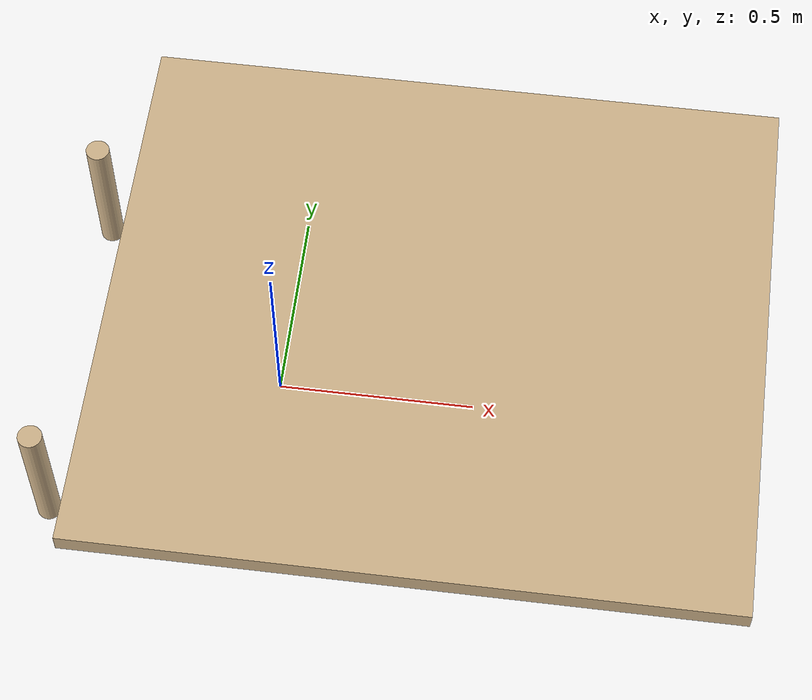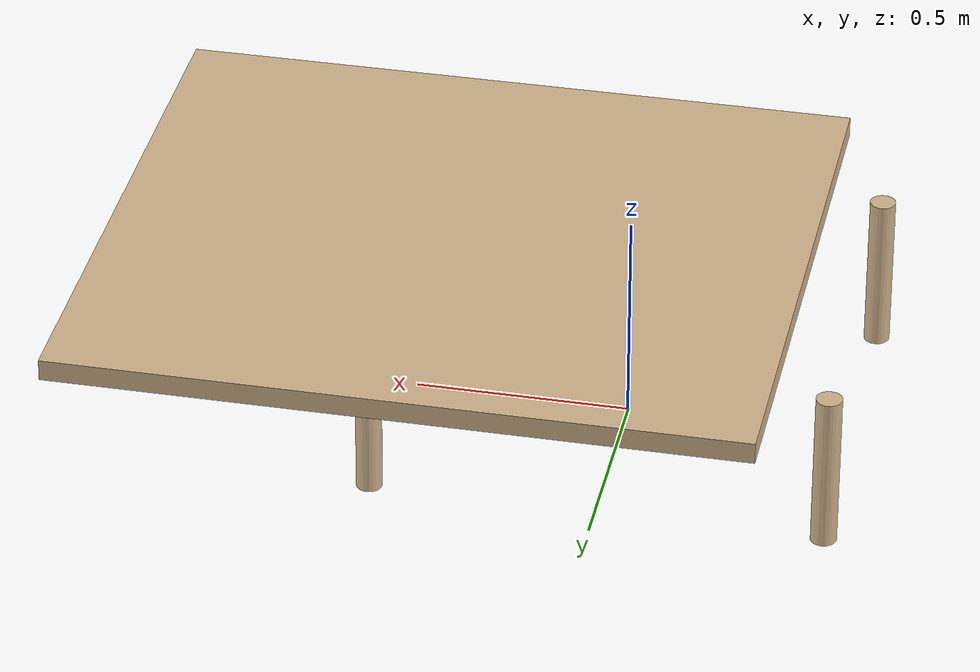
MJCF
<mujoco model="manipulation_table">

  <default>
    <default class="table">
      <geom material="table_mat" condim="6"/>
    </default>
  </default>

  <asset>
    <!-- Wooden table appearance with good friction -->
    <material name="table_mat" rgba="0.82 0.71 0.55 1" specular="0.3" shininess="0.1"/>
  </asset>

  <worldbody>
    <body name="table" pos="0 0 0">
      <!-- Table top + legs -->
      <geom name="table_surface" class="table" type="box" size="0.8 0.7 0.025" pos="0.4 0 0.4" friction="1.2 0.005 0.0001" solimp="0.99 0.99 0.001" solref="0.001 1"/>
      <geom name="leg_front_right" class="table" type="cylinder" size="0.03 0.1875" pos="0.52 0.42 0.1875" friction="0.9 0.005 0.0001"/>
      <geom name="leg_front_left" class="table" type="cylinder" size="0.03 0.1875" pos="-0.52 0.42 0.1875" friction="0.9 0.005 0.0001"/>
      <geom name="leg_back_right" class="table" type="cylinder" size="0.03 0.1875" pos="0.52 -0.42 0.1875" friction="0.9 0.005 0.0001"/>
      <geom name="leg_back_left" class="table" type="cylinder" size="0.03 0.1875" pos="-0.52 -0.42 0.1875" friction="0.9 0.005 0.0001"/>
    </body>
  </worldbody>
</mujoco>
